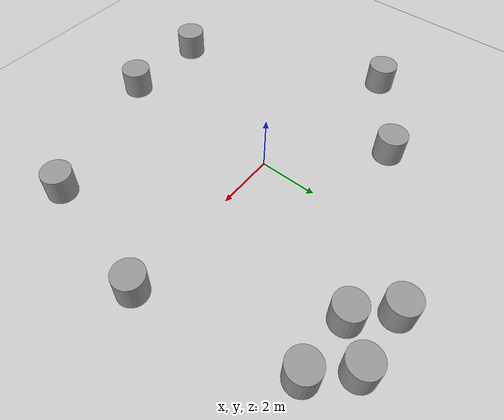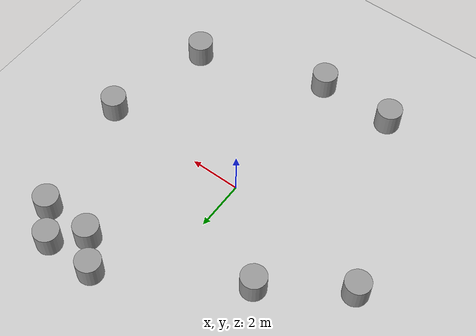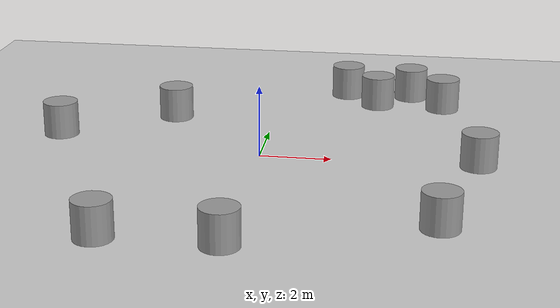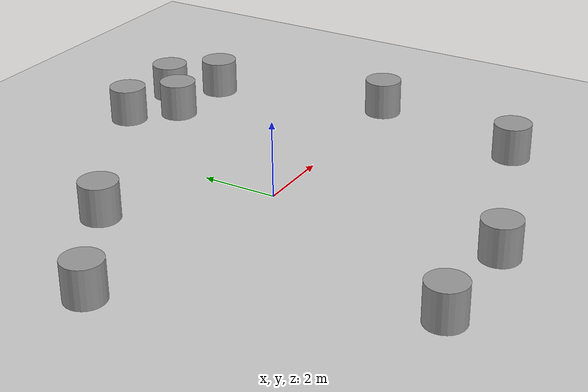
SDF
<sdf version="1.6">
 <world name="default">
  <light name="sun" type="directional">
   <pose>0 0 10 0 -0 0</pose>
   <diffuse>0.8 0.8 0.8 1</diffuse>
   <specular>0.2 0.2 0.2 1</specular>
   <attenuation>
    <range>1000</range>
    <constant>0.9</constant>
    <linear>0.01</linear>
    <quadratic>0.001</quadratic>
   </attenuation>
   <direction>-0.5 0.1 -0.9</direction>
  </light>
  <model name="ground_plane">
   <static>1</static>
   <link name="link">
    <collision name="collision">
     <geometry><plane><normal>0 0 1</normal><size>100 100</size></plane></geometry>
     <surface><friction><ode><mu>100</mu><mu2>50</mu2></ode></friction></surface>
    </collision>
    <visual name="visual">
     <cast_shadows>0</cast_shadows>
     <geometry><plane><normal>0 0 1</normal><size>100 100</size></plane></geometry>
     <material>
      <script><uri>file://media/materials/scripts/gazebo.material</uri><name>Gazebo/Grey</name></script>
     </material>
    </visual>
   </link>
  </model>
  <gravity>0 0 -9.8</gravity>
  <magnetic_field>6e-06 2.3e-05 -4.2e-05</magnetic_field>
  <atmosphere type="adiabatic"/>
  <physics name="default_physics" default="0" type="ode">
   <max_step_size>0.001</max_step_size>
   <real_time_factor>1</real_time_factor>
   <real_time_update_rate>1000</real_time_update_rate>
  </physics>
  <scene><ambient>0.4 0.4 0.4 1</ambient><background>0.7 0.7 0.7 1</background><shadows>1</shadows></scene>
  <spherical_coordinates>
   <surface_model>EARTH_WGS84</surface_model>
   <latitude_deg>0</latitude_deg>
   <longitude_deg>0</longitude_deg>
   <elevation>0</elevation>
   <heading_deg>0</heading_deg>
  </spherical_coordinates>
  <model name="unit_cylinder">
   <pose>4.99998 4.93927 0.499991 1e-06 -1e-06 6e-06</pose>
   <link name="link">
    <inertial>
     <mass>1</mass>
     <inertia><ixx>0.145833</ixx><ixy>0</ixy><ixz>0</ixz><iyy>0.145833</iyy><iyz>0</iyz><izz>0.125</izz></inertia>
    </inertial>
    <collision name="collision">
     <geometry><cylinder><radius>0.5</radius><length>1</length></cylinder></geometry>
    </collision>
    <visual name="visual">
     <geometry><cylinder><radius>0.5</radius><length>1</length></cylinder></geometry>
     <material>
      <script><name>Gazebo/Grey</name><uri>file://media/materials/scripts/gazebo.material</uri></script>
     </material>
    </visual>
   </link>
  </model>
  <model name="unit_cylinder_clone">
   <pose>3 5 0.499991 -0 -0 -0</pose>
   <link name="link">
    <inertial>
     <mass>1</mass>
     <inertia><ixx>0.145833</ixx><ixy>0</ixy><ixz>0</ixz><iyy>0.145833</iyy><iyz>0</iyz><izz>0.125</izz></inertia>
    </inertial>
    <collision name="collision">
     <geometry><cylinder><radius>0.5</radius><length>1</length></cylinder></geometry>
    </collision>
    <visual name="visual">
     <geometry><cylinder><radius>0.5</radius><length>1</length></cylinder></geometry>
     <material>
      <script><name>Gazebo/Grey</name><uri>file://media/materials/scripts/gazebo.material</uri></script>
     </material>
    </visual>
   </link>
  </model>
  <model name="unit_cylinder_clone_0">
   <pose>4.99992 -4.29712 0.499998 3e-06 -1e-06 0.000139</pose>
   <link name="link">
    <inertial>
     <mass>1</mass>
     <inertia><ixx>0.145833</ixx><ixy>0</ixy><ixz>0</ixz><iyy>0.145833</iyy><iyz>0</iyz><izz>0.125</izz></inertia>
    </inertial>
    <collision name="collision">
     <geometry><cylinder><radius>0.5</radius><length>1</length></cylinder></geometry>
    </collision>
    <visual name="visual">
     <geometry><cylinder><radius>0.5</radius><length>1</length></cylinder></geometry>
     <material>
      <script><name>Gazebo/Grey</name><uri>file://media/materials/scripts/gazebo.material</uri></script>
     </material>
    </visual>
   </link>
  </model>
  <model name="unit_cylinder_clone_1">
   <pose>-3 3 0.499992 -2e-06 2e-06 -0</pose>
   <link name="link">
    <inertial>
     <mass>1</mass>
     <inertia><ixx>0.145833</ixx><ixy>0</ixy><ixz>0</ixz><iyy>0.145833</iyy><iyz>0</iyz><izz>0.125</izz></inertia>
    </inertial>
    <collision name="collision">
     <geometry><cylinder><radius>0.5</radius><length>1</length></cylinder></geometry>
    </collision>
    <visual name="visual">
     <geometry><cylinder><radius>0.5</radius><length>1</length></cylinder></geometry>
     <material>
      <script><name>Gazebo/Grey</name><uri>file://media/materials/scripts/gazebo.material</uri></script>
     </material>
    </visual>
   </link>
  </model>
  <model name="unit_cylinder_clone_2">
   <pose>4 6 0.499992 -3e-06 3e-06 0</pose>
   <link name="link">
    <inertial>
     <mass>1</mass>
     <inertia><ixx>0.145833</ixx><ixy>0</ixy><ixz>0</ixz><iyy>0.145833</iyy><iyz>0</iyz><izz>0.125</izz></inertia>
    </inertial>
    <collision name="collision">
     <geometry><cylinder><radius>0.5</radius><length>1</length></cylinder></geometry>
    </collision>
    <visual name="visual">
     <geometry><cylinder><radius>0.5</radius><length>1</length></cylinder></geometry>
     <material>
      <script><name>Gazebo/Grey</name><uri>file://media/materials/scripts/gazebo.material</uri></script>
     </material>
    </visual>
   </link>
  </model>
  <model name="unit_cylinder_clone_3">
   <pose>6 1e-06 0.499993 0 -0 0</pose>
   <link name="link">
    <inertial>
     <mass>1</mass>
     <inertia><ixx>0.145833</ixx><ixy>0</ixy><ixz>0</ixz><iyy>0.145833</iyy><iyz>0</iyz><izz>0.125</izz></inertia>
    </inertial>
    <collision name="collision">
     <geometry><cylinder><radius>0.5</radius><length>1</length></cylinder></geometry>
    </collision>
    <visual name="visual">
     <geometry><cylinder><radius>0.5</radius><length>1</length></cylinder></geometry>
     <material>
      <script><name>Gazebo/Grey</name><uri>file://media/materials/scripts/gazebo.material</uri></script>
     </material>
    </visual>
   </link>
  </model>
  <model name="unit_cylinder_clone_4">
   <pose>-3e-06 -6 0.499994 -4e-06 -4e-06 -0</pose>
   <link name="link">
    <inertial>
     <mass>1</mass>
     <inertia><ixx>0.145833</ixx><ixy>0</ixy><ixz>0</ixz><iyy>0.145833</iyy><iyz>0</iyz><izz>0.125</izz></inertia>
    </inertial>
    <collision name="collision">
     <geometry><cylinder><radius>0.5</radius><length>1</length></cylinder></geometry>
    </collision>
    <visual name="visual">
     <geometry><cylinder><radius>0.5</radius><length>1</length></cylinder></geometry>
     <material>
      <script><name>Gazebo/Grey</name><uri>file://media/materials/scripts/gazebo.material</uri></script>
     </material>
    </visual>
   </link>
  </model>
  <model name="unit_cylinder_clone_5">
   <pose>-6 0.999996 0.499993 4e-06 -2e-06 2e-05</pose>
   <link name="link">
    <inertial>
     <mass>1</mass>
     <inertia><ixx>0.145833</ixx><ixy>0</ixy><ixz>0</ixz><iyy>0.145833</iyy><iyz>0</iyz><izz>0.125</izz></inertia>
    </inertial>
    <collision name="collision">
     <geometry><cylinder><radius>0.5</radius><length>1</length></cylinder></geometry>
    </collision>
    <visual name="visual">
     <geometry><cylinder><radius>0.5</radius><length>1</length></cylinder></geometry>
     <material>
      <script><name>Gazebo/Grey</name><uri>file://media/materials/scripts/gazebo.material</uri></script>
     </material>
    </visual>
   </link>
  </model>
  <model name="unit_cylinder_clone_6">
   <pose>2 6 0.499997 3e-06 4e-06 -0</pose>
   <link name="link">
    <inertial>
     <mass>1</mass>
     <inertia><ixx>0.145833</ixx><ixy>0</ixy><ixz>0</ixz><iyy>0.145833</iyy><iyz>0</iyz><izz>0.125</izz></inertia>
    </inertial>
    <collision name="collision">
     <geometry><cylinder><radius>0.5</radius><length>1</length></cylinder></geometry>
    </collision>
    <visual name="visual">
     <geometry><cylinder><radius>0.5</radius><length>1</length></cylinder></geometry>
     <material>
      <script><name>Gazebo/Grey</name><uri>file://media/materials/scripts/gazebo.material</uri></script>
     </material>
    </visual>
   </link>
  </model>
  <model name="unit_cylinder_clone_7">
   <pose>-3 -6 0.499997 3e-06 4e-06 -0</pose>
   <link name="link">
    <inertial>
     <mass>1</mass>
     <inertia><ixx>0.145833</ixx><ixy>0</ixy><ixz>0</ixz><iyy>0.145833</iyy><iyz>0</iyz><izz>0.125</izz></inertia>
    </inertial>
    <collision name="collision">
     <geometry><cylinder><radius>0.5</radius><length>1</length></cylinder></geometry>
    </collision>
    <visual name="visual">
     <geometry><cylinder><radius>0.5</radius><length>1</length></cylinder></geometry>
     <material>
      <script><name>Gazebo/Grey</name><uri>file://media/materials/scripts/gazebo.material</uri></script>
     </material>
    </visual>
   </link>
  </model>
 </world>
</sdf>
